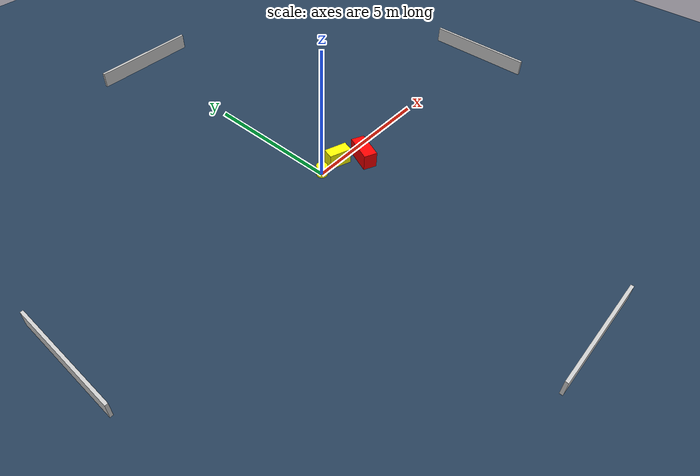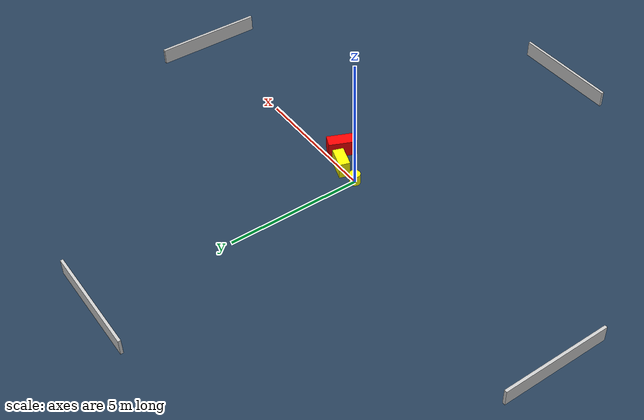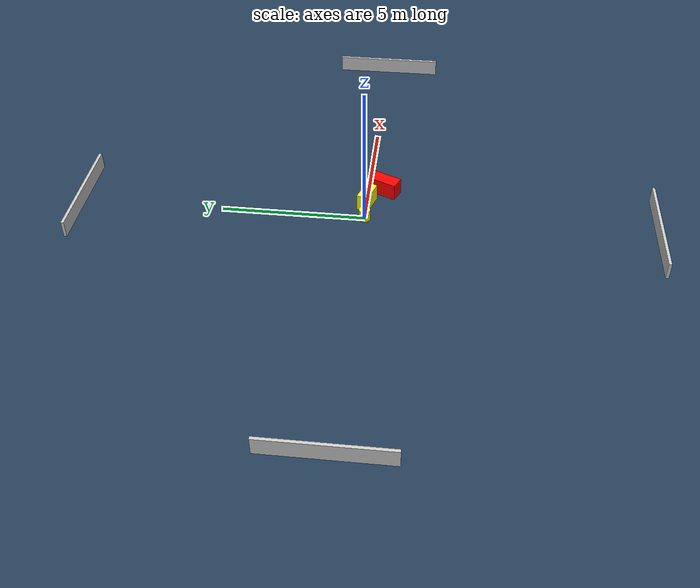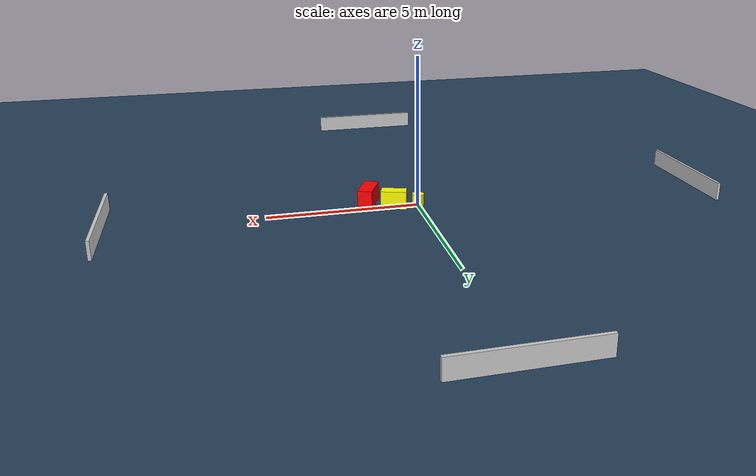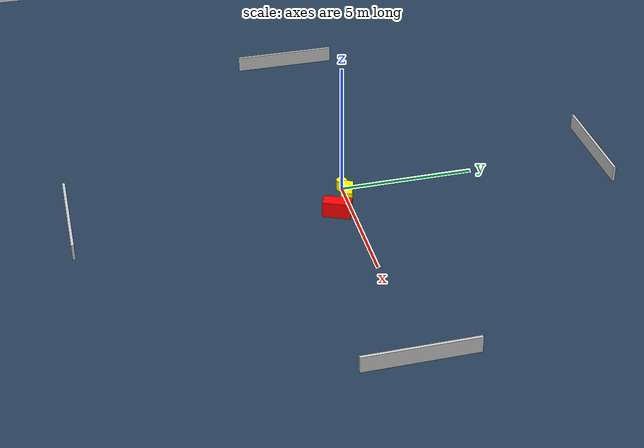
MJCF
<?xml version="1.0" ?>
<mujoco model="generated_environment">
  <option timestep="0.01" integrator="RK4" cone="elliptic"/>
  <default>
    <geom density="1"/>
  </default>
  <asset>
    <texture builtin="gradient" height="3072" name="skybox" rgb1="0.3 0.5 0.7" rgb2="0 0 0" type="skybox" width="512"/>
    <texture builtin="checker" height="300" name="groundplane" rgb1="0.2 0.3 0.4" rgb2="0.1 0.2 0.3" type="2d" width="300"/>
    <material name="groundplane" reflectance="0.2" texrepeat="5 5" texture="groundplane"/>
  </asset>
  <worldbody>
    <light dir="0 0 -1" directional="true" pos="0 0 1.5"/>
    <geom condim="3" friction="0.5 0.005 0.001" material="groundplane" name="floor" pos="0 0 0" size="0 0 0.05" type="plane"/>
    <body name="walls">
      <geom name="wall_1" condim="4" pos="-10.0 0.0 0.3" rgba="0.800000011920929 0.800000011920929 0.800000011920929 1.0" size="0.05 2.0 0.3" type="box"/>
      <geom name="wall_2" condim="4" pos="10.0 0.0 0.3" rgba="0.800000011920929 0.800000011920929 0.800000011920929 1.0" size="0.05 2.0 0.3" type="box"/>
      <geom name="wall_3" condim="4" pos="0.0 -10.0 0.3" rgba="0.800000011920929 0.800000011920929 0.800000011920929 1.0" size="2.0 0.05 0.3" type="box"/>
      <geom name="wall_4" condim="4" pos="0.0 10.0 0.3" rgba="0.800000011920929 0.800000011920929 0.800000011920929 1.0" size="2.0 0.05 0.3" type="box"/>
    </body>
    <body name="robot">
      <joint name="joint_x" type="slide" pos="0 0 0" axis="1 0 0"/>
      <joint name="joint_y" type="slide" pos="0 0 0" axis="0 1 0"/>
      <geom name="robot" type="cylinder" pos="0.0 0.0 0.2" size="0.2 0.2 0.0" mass="5.0" friction="1.0 0.005 0.0001" condim="4" rgba="1.0 1.0 0.0 1.0"/>
    </body>
    <body name="obstacle_1_movable">
      <geom name="obstacle_1_movable" condim="4" pos="0.8196519759201819 -0.003230280662786518 0.3" euler="0 0 251.79392442328376" friction="0.0 0.005 0.001" rgba="1.0 1.0 0.0 1.0" size="0.20307171814198602 0.41782476551730074 0.3" type="box" mass="0.1"/>
      <joint type="free"/>
    </body>
    <body name="obstacle_2_static">
      <geom name="obstacle_2_static" condim="4" pos="1.5771289022613855 -0.5620178041182622 0.3" euler="0 0 65.96968261948554" friction="0.0 0.005 0.001" rgba="1.0 0.0 0.0 1.0" size="0.5174447222203474 0.2445593418001926 0.3" type="box"/>
    </body>
  </worldbody>
  <actuator>
    <motor name="actuator_x" joint="joint_x" gear="1" ctrlrange="-1 1"/>
    <motor name="actuator_y" joint="joint_y" gear="1" ctrlrange="-1 1"/>
  </actuator>
</mujoco>
